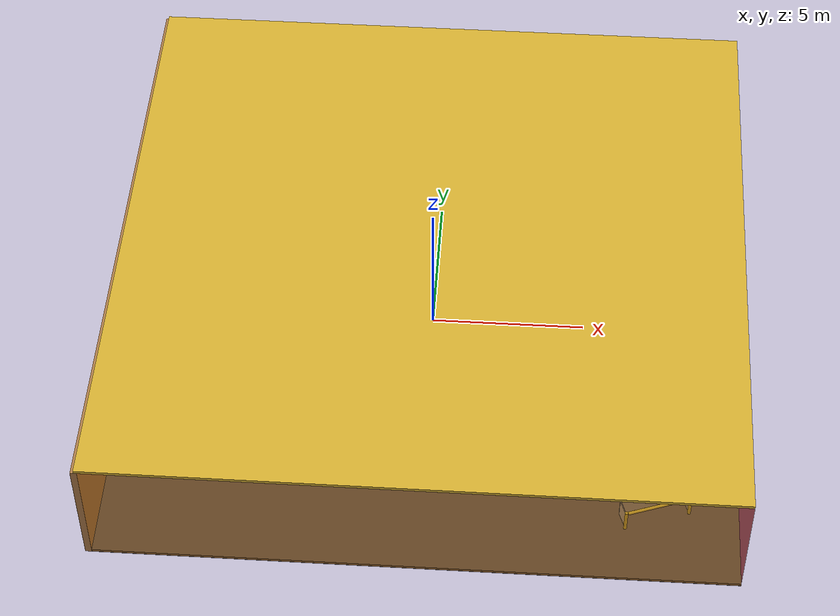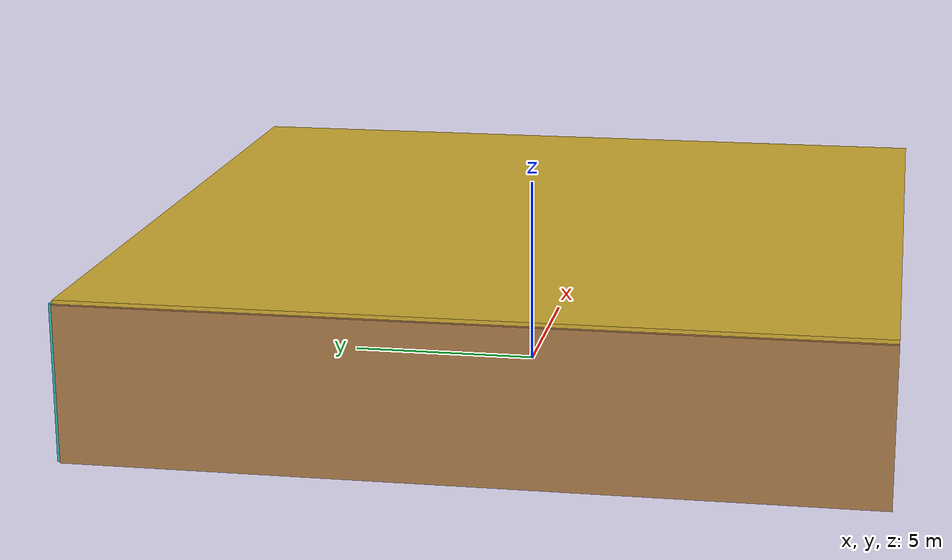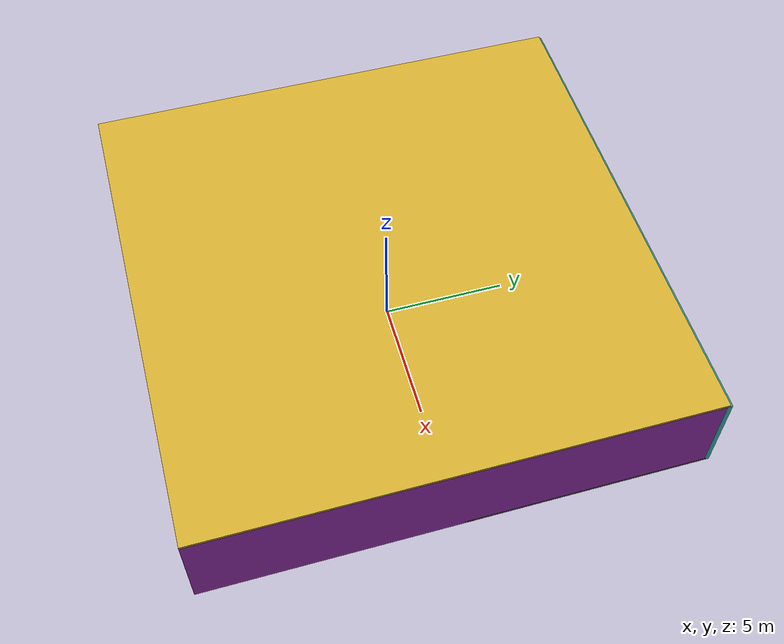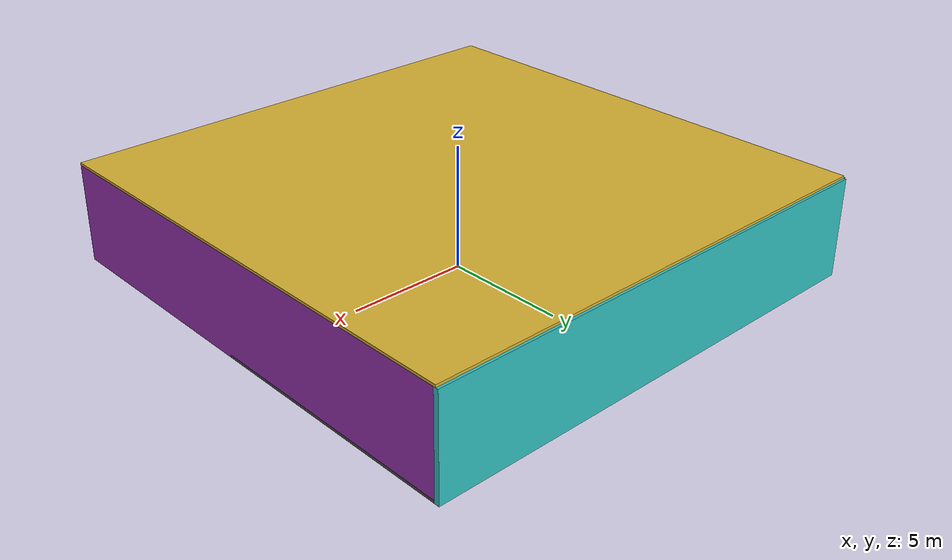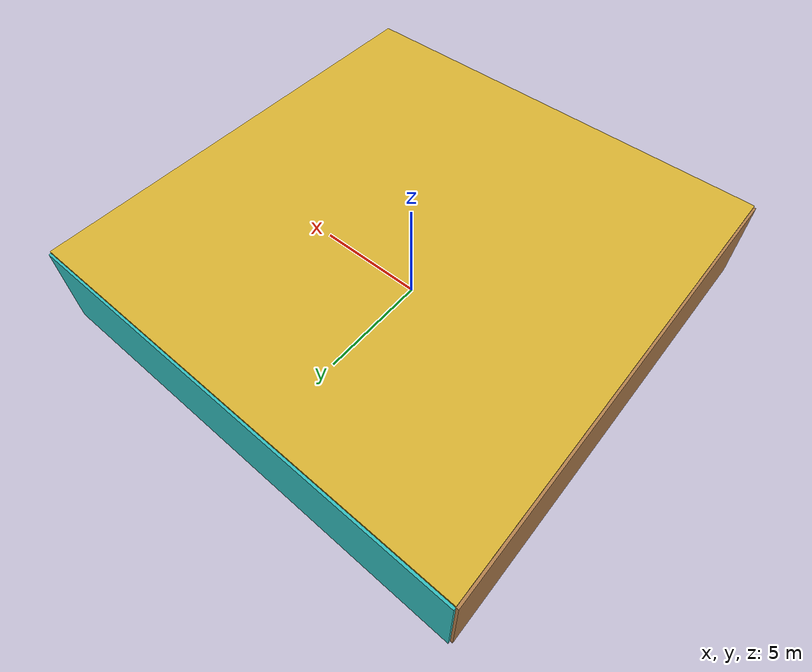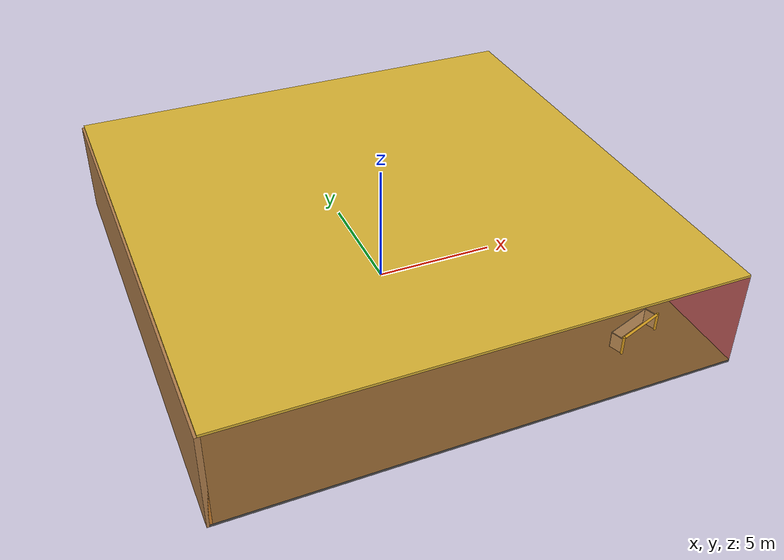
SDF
<sdf version="1.4">
 <world name="default">
  <physics type="ode">
   <max_step_size>0.001</max_step_size>
   <real_time_factor>1</real_time_factor>
   <real_time_update_rate>1000</real_time_update_rate>
   <gravity>0 0 -9.8</gravity>
  </physics>
  <scene><ambient>0.4 0.4 0.4 1</ambient><background>0.7 0.7 0.7 1</background><shadows>1</shadows></scene>
  <model name="Surrounding">
   <static>1</static>
   <link name="Ceiling">
    <collision name="Ceiling_Collision"><geometry><box><size>20 20 0.1</size></box></geometry></collision>
    <visual name="Ceiling_Visual">
     <geometry><box><size>20 20 0.1</size></box></geometry>
     <material>
      <script><uri>file://media/materials/scripts/gazebo.material</uri><name>Gazebo/Gold</name></script>
     </material>
    </visual>
    <pose>0 0 4.05 0 0 0</pose>
   </link>
   <link name="Wall_South">
    <collision name="Wall_South_Collision">
     <geometry><box><size>20 0 4</size></box></geometry>
     <pose>0 0 2 0 -0 0</pose>
    </collision>
    <visual name="Wall_South_Visual">
     <pose>0 0 2 0 -0 0</pose>
     <geometry><box><size>20 0 4</size></box></geometry>
     <material>
      <script>
       <uri>file://media/materials/scripts/gazebo.material</uri>
       <name>Gazebo/OrangeTransparent</name>
      </script>
     </material>
    </visual>
    <velocity_decay><linear>0</linear><angular>0</angular></velocity_decay>
    <pose>0 -10 0 0 -0 0</pose>
   </link>
   <link name="Wall_East">
    <collision name="Wall_21_Collision">
     <geometry><box><size>20 0 4</size></box></geometry>
     <pose>0 0 2 0 -0 0</pose>
    </collision>
    <visual name="Wall_21_Visual">
     <pose>0 0 2 0 -0 0</pose>
     <geometry><box><size>20 0 4</size></box></geometry>
     <material>
      <script><uri>file://media/materials/scripts/gazebo.material</uri><name>Gazebo/PurpleGlow</name></script>
     </material>
    </visual>
    <velocity_decay><linear>0</linear><angular>0</angular></velocity_decay>
    <pose>10 0 0 0 -0 1.5708</pose>
   </link>
   <link name="Wall_North">
    <collision name="Wall_22_Collision">
     <geometry><box><size>20 0.2 4</size></box></geometry>
     <pose>0 0 2 0 -0 0</pose>
    </collision>
    <visual name="Wall_22_Visual">
     <pose>0 0 2 0 -0 0</pose>
     <geometry><box><size>20 0.2 4</size></box></geometry>
     <material>
      <script><uri>file://media/materials/scripts/gazebo.material</uri><name>Gazebo/Turquoise</name></script>
     </material>
    </visual>
    <velocity_decay><linear>0</linear><angular>0</angular></velocity_decay>
    <pose>0 10 0 0 -0 0</pose>
   </link>
   <link name="Wall_West">
    <collision name="Wall_23_Collision">
     <geometry><box><size>20 0.2 4</size></box></geometry>
     <pose>0 0 2 0 -0 0</pose>
    </collision>
    <visual name="Wall_23_Visual">
     <pose>0 0 2 0 -0 0</pose>
     <geometry><box><size>20 0.2 4</size></box></geometry>
     <material>
      <script><uri>file://media/materials/scripts/gazebo.material</uri><name>Gazebo/WoodPallet</name></script>
     </material>
    </visual>
    <velocity_decay><linear>0</linear><angular>0</angular></velocity_decay>
    <pose>-10 0 0 0 0 -1.5708</pose>
   </link>
   <link name="Ground_link">
    <collision name="collision">
     <pose>0 0 .05 0 -0 0</pose>
     <geometry><box><size>20 20 0.1</size></box></geometry>
    </collision>
    <visual name="visual">
     <pose>0 0 .05 0 -0 0</pose>
     <geometry><box><size>20 20 0.1</size></box></geometry>
     <material>
      <script><uri>file://media/materials/scripts/gazebo.material</uri><name>Gazebo/DarkGrey</name></script>
     </material>
    </visual>
   </link>
   <static>1</static>
  </model>
  <spherical_coordinates>
   <surface_model>EARTH_WGS84</surface_model>
   <latitude_deg>0</latitude_deg>
   <longitude_deg>0</longitude_deg>
   <elevation>0</elevation>
   <heading_deg>0</heading_deg>
  </spherical_coordinates>
  <light name="lightball_0" type="diffuse">
   <diffuse>0.8 0.8 0.8 1</diffuse>
   <specular>0.2 0.2 0.2 1</specular>
   <attenuation>
    <range>100</range>
    <constant>0.7</constant>
    <linear>0.01</linear>
    <quadratic>0.001</quadratic>
   </attenuation>
   <direction>-0.5 0.1 -0.9</direction>
   <pose>0.118799541003 -4.08590867636 3.44247619225 0 0 0</pose>
  </light>
  <light name="lightball_1" type="diffuse">
   <diffuse>0.8 0.8 0.8 1</diffuse>
   <specular>0.2 0.2 0.2 1</specular>
   <attenuation>
    <range>100</range>
    <constant>0.7</constant>
    <linear>0.01</linear>
    <quadratic>0.001</quadratic>
   </attenuation>
   <direction>-0.5 0.1 -0.9</direction>
   <pose>6.47552847849 -3.36347000941 0.651172293221 0 0 0</pose>
  </light>
  <light name="lightball_2" type="diffuse">
   <diffuse>0.8 0.8 0.8 1</diffuse>
   <specular>0.2 0.2 0.2 1</specular>
   <attenuation>
    <range>100</range>
    <constant>0.7</constant>
    <linear>0.01</linear>
    <quadratic>0.001</quadratic>
   </attenuation>
   <direction>-0.5 0.1 -0.9</direction>
   <pose>6.09432538513 4.03097203471 0.681746620135 0 0 0</pose>
  </light>
  <light name="lightball_3" type="diffuse">
   <diffuse>0.8 0.8 0.8 1</diffuse>
   <specular>0.2 0.2 0.2 1</specular>
   <attenuation>
    <range>100</range>
    <constant>0.7</constant>
    <linear>0.01</linear>
    <quadratic>0.001</quadratic>
   </attenuation>
   <direction>-0.5 0.1 -0.9</direction>
   <pose>-5.74496669872 -4.56784870648 3.82373349933 0 0 0</pose>
  </light>
  <light name="lightball_4" type="diffuse">
   <diffuse>0.8 0.8 0.8 1</diffuse>
   <specular>0.2 0.2 0.2 1</specular>
   <attenuation>
    <range>100</range>
    <constant>0.7</constant>
    <linear>0.01</linear>
    <quadratic>0.001</quadratic>
   </attenuation>
   <direction>-0.5 0.1 -0.9</direction>
   <pose>-1.45299682436 9.8873697899 1.93242046325 0 0 0</pose>
  </light>
  <light name="lightball_5" type="diffuse">
   <diffuse>0.8 0.8 0.8 1</diffuse>
   <specular>0.2 0.2 0.2 1</specular>
   <attenuation>
    <range>100</range>
    <constant>0.7</constant>
    <linear>0.01</linear>
    <quadratic>0.001</quadratic>
   </attenuation>
   <direction>-0.5 0.1 -0.9</direction>
   <pose>-6.68279444112 6.21479171261 3.68324429372 0 0 0</pose>
  </light>
  <light name="lightball_6" type="diffuse">
   <diffuse>0.8 0.8 0.8 1</diffuse>
   <specular>0.2 0.2 0.2 1</specular>
   <attenuation>
    <range>100</range>
    <constant>0.7</constant>
    <linear>0.01</linear>
    <quadratic>0.001</quadratic>
   </attenuation>
   <direction>-0.5 0.1 -0.9</direction>
   <pose>8.54364739104 -4.5184448131 1.61504227318 0 0 0</pose>
  </light>
  <light name="lightball_7" type="diffuse">
   <diffuse>0.8 0.8 0.8 1</diffuse>
   <specular>0.2 0.2 0.2 1</specular>
   <attenuation>
    <range>100</range>
    <constant>0.7</constant>
    <linear>0.01</linear>
    <quadratic>0.001</quadratic>
   </attenuation>
   <direction>-0.5 0.1 -0.9</direction>
   <pose>1.12212355339 1.34686519245 1.69501102145 0 0 0</pose>
  </light>
  <light name="lightball_8" type="diffuse">
   <diffuse>0.8 0.8 0.8 1</diffuse>
   <specular>0.2 0.2 0.2 1</specular>
   <attenuation>
    <range>100</range>
    <constant>0.7</constant>
    <linear>0.01</linear>
    <quadratic>0.001</quadratic>
   </attenuation>
   <direction>-0.5 0.1 -0.9</direction>
   <pose>-7.15388456729 -0.320104392663 3.08582301346 0 0 0</pose>
  </light>
  <light name="lightball_9" type="diffuse">
   <diffuse>0.8 0.8 0.8 1</diffuse>
   <specular>0.2 0.2 0.2 1</specular>
   <attenuation>
    <range>100</range>
    <constant>0.7</constant>
    <linear>0.01</linear>
    <quadratic>0.001</quadratic>
   </attenuation>
   <direction>-0.5 0.1 -0.9</direction>
   <pose>-1.77765212996 -4.25377165207 0.735779382621 0 0 0</pose>
  </light>
  <light name="lightball_10" type="diffuse">
   <diffuse>0.8 0.8 0.8 1</diffuse>
   <specular>0.2 0.2 0.2 1</specular>
   <attenuation>
    <range>100</range>
    <constant>0.7</constant>
    <linear>0.01</linear>
    <quadratic>0.001</quadratic>
   </attenuation>
   <direction>-0.5 0.1 -0.9</direction>
   <pose>-5.1970360463 -8.88702681897 1.43652724277 0 0 0</pose>
  </light>
  <light name="lightball_11" type="diffuse">
   <diffuse>0.8 0.8 0.8 1</diffuse>
   <specular>0.2 0.2 0.2 1</specular>
   <attenuation>
    <range>100</range>
    <constant>0.7</constant>
    <linear>0.01</linear>
    <quadratic>0.001</quadratic>
   </attenuation>
   <direction>-0.5 0.1 -0.9</direction>
   <pose>7.12832511354 -0.808826406148 2.6854832785 0 0 0</pose>
  </light>
  <light name="lightball_12" type="diffuse">
   <diffuse>0.8 0.8 0.8 1</diffuse>
   <specular>0.2 0.2 0.2 1</specular>
   <attenuation>
    <range>100</range>
    <constant>0.7</constant>
    <linear>0.01</linear>
    <quadratic>0.001</quadratic>
   </attenuation>
   <direction>-0.5 0.1 -0.9</direction>
   <pose>-8.53674914522 -9.29026793138 2.4442121138 0 0 0</pose>
  </light>
  <include><uri>model://table</uri><pose>-7.92294490145 7.15979555048 0 0 0 2.79706475064</pose></include>
  <include>
   <uri>model://robocup_3Dsim_goal</uri>
   <pose>-3.88716557561 -4.47445742254 0 0 0 2.25025515457</pose>
  </include>
  <include>
   <uri>model://textured_shapes</uri>
   <pose>-5.21723467389 1.72836218809 0 0 0 0.698108006936</pose>
  </include>
  <include>
   <uri>model://robocup_3Dsim_goal</uri>
   <pose>1.70869950843 -2.23588151837 0 0 0 0.989889442148</pose>
  </include>
  <include>
   <uri>model://robocup_3Dsim_goal</uri>
   <pose>7.45274511466 -7.80363874468 0 0 0 1.90869141954</pose>
  </include>
  <include><uri>model://table</uri><pose>8.22813498753 -0.868467462002 0 0 0 0.738377122294</pose></include>
  <include><uri>model://cabinet</uri><pose>7.48946667478 0.988031220546 0 0 0 2.60793890709</pose></include>
 </world>
</sdf>

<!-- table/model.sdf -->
<sdf version="1.5">
  <model name="table">
    <static>true</static>
    <link name="link">
      <collision name="surface">
        <pose>0 0 1.0 0 0 0</pose>
        <geometry>
          <box>
            <size>1.5 0.8 0.03</size>
          </box>
        </geometry>
        <surface>
          <friction>
            <ode>
              <mu>0.6</mu>
              <mu2>0.6</mu2>
            </ode>
          </friction>
        </surface>
      </collision>
      <visual name="visual1">
        <pose>0 0 1.0 0 0 0</pose>
        <geometry>
          <box>
            <size>1.5 0.8 0.03</size>
          </box>
        </geometry>
        <material>
          <script>
            <uri>model://media/materials/scripts/gazebo.material</uri>
            <name>Gazebo/Wood</name>
          </script>
        </material>
      </visual>
      <collision name="front_left_leg">
        <pose>0.68 0.38 0.5 0 0 0</pose>
        <geometry>
          <cylinder>
            <radius>0.02</radius>
            <length>1.0</length>
          </cylinder>
        </geometry>
      </collision>
      <visual name="front_left_leg">
        <pose>0.68 0.38 0.5 0 0 0</pose>
        <geometry>
          <cylinder>
            <radius>0.02</radius>
            <length>1.0</length>
          </cylinder>
        </geometry>
        <material>
          <script>
            <uri>model://media/materials/scripts/gazebo.material</uri>
            <name>Gazebo/Grey</name>
          </script>
        </material>
      </visual>
      <collision name="front_right_leg">
        <pose>0.68 -0.38 0.5 0 0 0</pose>
        <geometry>
          <cylinder>
            <radius>0.02</radius>
            <length>1.0</length>
          </cylinder>
        </geometry>
      </collision>
      <visual name="front_right_leg">
        <pose>0.68 -0.38 0.5 0 0 0</pose>
        <geometry>
          <cylinder>
            <radius>0.02</radius>
            <length>1.0</length>
          </cylinder>
        </geometry>
        <material>
          <script>
            <uri>model://media/materials/scripts/gazebo.material</uri>
            <name>Gazebo/Grey</name>
          </script>
        </material>
      </visual>
      <collision name="back_right_leg">
        <pose>-0.68 -0.38 0.5 0 0 0</pose>
        <geometry>
          <cylinder>
            <radius>0.02</radius>
            <length>1.0</length>
          </cylinder>
        </geometry>
      </collision>
      <visual name="back_right_leg">
        <pose>-0.68 -0.38 0.5 0 0 0</pose>
        <geometry>
          <cylinder>
            <radius>0.02</radius>
            <length>1.0</length>
          </cylinder>
        </geometry>
        <material>
          <script>
            <uri>model://media/materials/scripts/gazebo.material</uri>
            <name>Gazebo/Grey</name>
          </script>
        </material>
      </visual>
      <collision name="back_left_leg">
        <pose>-0.68 0.38 0.5 0 0 0</pose>
        <geometry>
          <cylinder>
            <radius>0.02</radius>
            <length>1.0</length>
          </cylinder>
        </geometry>
      </collision>
      <visual name="back_left_leg">
        <pose>-0.68 0.38 0.5 0 0 0</pose>
        <geometry>
          <cylinder>
            <radius>0.02</radius>
            <length>1.0</length>
          </cylinder>
        </geometry>
        <material>
          <script>
            <uri>model://media/materials/scripts/gazebo.material</uri>
            <name>Gazebo/Grey</name>
          </script>
        </material>
      </visual>
    </link>
  </model>
</sdf>

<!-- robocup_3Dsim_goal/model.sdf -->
<sdf version="1.5">
  <model name="robocup_3d_goal">
    <static>true</static>
    <link name="left_post">
      <pose>0 1.05 0.45 0 0 0</pose>
      <collision name="collision">
        <geometry>
          <cylinder>
            <radius>0.05</radius>
            <length>0.9</length>
          </cylinder>
        </geometry>
      </collision>
      <visual name="visual">
        <geometry>
          <cylinder>
            <radius>0.05</radius>
            <length>0.9</length>
          </cylinder>
        </geometry>
        <material>
          <script>
            <uri>file://media/materials/scripts/gazebo.material</uri>
            <name>Gazebo/ZincYellow</name>
          </script>
        </material>
      </visual>
    </link>
    <link name="left_support_horiz_lower">
      <pose>0.30 1.05 0.01 0 0 0</pose>
      <collision name="collision">
        <geometry>
          <box>
            <size>0.50 0.02 0.02</size>
          </box>
        </geometry>
      </collision>
      <visual name="visual">
        <geometry>
          <box>
            <size>0.50 0.02 0.02</size>
          </box>
        </geometry>
        <material>
          <script>
            <uri>file://media/materials/scripts/gazebo.material</uri>
            <name>Gazebo/White</name>
          </script>
        </material>
      </visual>
    </link>
    <link name="left_support_horiz_upper">
      <pose>0.30 1.05 0.79 0 0 0</pose>
      <collision name="collision">
        <geometry>
          <box>
            <size>0.50 0.02 0.02</size>
          </box>
        </geometry>
      </collision>
      <visual name="visual">
        <geometry>
          <box>
            <size>0.50 0.02 0.02</size>
          </box>
        </geometry>
        <material>
          <script>
            <uri>file://media/materials/scripts/gazebo.material</uri>
            <name>Gazebo/White</name>
          </script>
        </material>
      </visual>
    </link>
    <link name="left_support_vertical">
      <pose>0.56 1.05 0.4 0 1.5708 0</pose>
      <collision name="collision">
        <geometry>
          <box>
            <size>0.80 0.02 0.02</size>
          </box>
        </geometry>
      </collision>
      <visual name="visual">
        <geometry>
          <box>
            <size>0.80 0.02 0.02</size>
          </box>
        </geometry>
        <material>
          <script>
            <uri>file://media/materials/scripts/gazebo.material</uri>
            <name>Gazebo/White</name>
          </script>
        </material>
      </visual>
    </link>
    <link name="right_support_horiz_lower">
      <pose>0.30 -1.05 0.01 0 0 0</pose>
      <collision name="collision">
        <geometry>
          <box>
            <size>0.50 0.02 0.02</size>
          </box>
        </geometry>
      </collision>
      <visual name="visual">
        <geometry>
          <box>
            <size>0.50 0.02 0.02</size>
          </box>
        </geometry>
        <material>
          <script>
            <uri>file://media/materials/scripts/gazebo.material</uri>
            <name>Gazebo/White</name>
          </script>
        </material>
      </visual>
    </link>
    <link name="right_support_horiz_upper">
      <pose>0.30 -1.05 0.79 0 0 0</pose>
      <collision name="collision">
        <geometry>
          <box>
            <size>0.50 0.02 0.02</size>
          </box>
        </geometry>
      </collision>
      <visual name="visual">
        <geometry>
          <box>
            <size>0.50 0.02 0.02</size>
          </box>
        </geometry>
        <material>
          <script>
            <uri>file://media/materials/scripts/gazebo.material</uri>
            <name>Gazebo/White</name>
          </script>
        </material>
      </visual>
    </link>
    <link name="right_support_vertical">
      <pose>0.56 -1.05 0.4 0 1.5708 0</pose>
      <collision name="collision">
        <geometry>
          <box>
            <size>0.80 0.02 0.02</size>
          </box>
        </geometry>
      </collision>
      <visual name="visual">
        <geometry>
          <box>
            <size>0.80 0.02 0.02</size>
          </box>
        </geometry>
        <material>
          <script>
            <uri>file://media/materials/scripts/gazebo.material</uri>
            <name>Gazebo/White</name>
          </script>
        </material>
      </visual>
    </link>
    <link name="center_support_horiz_lower">
      <pose>0.56 0 0.01 0 1.5708 0</pose>
      <collision name="collision">
        <geometry>
          <box>
            <size>0.02 2.08 0.02</size>
          </box>
        </geometry>
      </collision>
      <visual name="visual">
        <geometry>
          <box>
            <size>0.02 2.08 0.02</size>
          </box>
        </geometry>
        <material>
          <script>
            <uri>file://media/materials/scripts/gazebo.material</uri>
            <name>Gazebo/White</name>
          </script>
        </material>
      </visual>
    </link>
    <link name="center_support_horiz_upper">
      <pose>0.56 0 0.79 0 1.5708 0</pose>
      <collision name="collision">
        <geometry>
          <box>
            <size>0.02 2.08 0.02</size>
          </box>
        </geometry>
      </collision>
      <visual name="visual">
        <geometry>
          <box>
            <size>0.02 2.08 0.02</size>
          </box>
        </geometry>
        <material>
          <script>
            <uri>file://media/materials/scripts/gazebo.material</uri>
            <name>Gazebo/White</name>
          </script>
        </material>
      </visual>
    </link>
    <link name="right_post">
      <pose>0 -1.05 0.45 0 0 0</pose>
      <collision name="collision">
        <geometry>
          <cylinder>
            <radius>0.05</radius>
            <length>0.9</length>
          </cylinder>
        </geometry>
      </collision>
      <visual name="visual">
        <geometry>
          <cylinder>
            <radius>0.05</radius>
            <length>0.9</length>
          </cylinder>
        </geometry>
        <material>
          <script>
            <uri>file://media/materials/scripts/gazebo.material</uri>
            <name>Gazebo/ZincYellow</name>
          </script>
        </material>
      </visual>
    </link>
    <link name="crossbar">
      <pose>0 0 0.85 1.57 1.57 0</pose>
      <collision name="collision">
        <geometry>
          <cylinder>
            <radius>0.05</radius>
            <length>2.0</length>
          </cylinder>
        </geometry>
      </collision>
      <visual name="visual">
        <geometry>
          <cylinder>
            <radius>0.05</radius>
            <length>2.0</length>
          </cylinder>
        </geometry>
        <material>
          <script>
            <uri>file://media/materials/scripts/gazebo.material</uri>
            <name>Gazebo/ZincYellow</name>
          </script>
        </material>
      </visual>
    </link>
    <link name="center_net">
      <pose>0.56 0 0.40 0 0 0</pose>
      <collision name="collision">
        <geometry>
          <box>
            <size>0.01 2.1 0.80</size>
          </box>
        </geometry>
      </collision>
      <visual name="visual">
        <geometry>
          <box>
            <size>0.01 2.1 0.80</size>
          </box>
        </geometry>
        <material>
          <script>
            <uri>model://../model_source/models/robocup09_spl_field/materials/scripts/</uri>
            <uri>model://../model_source/models/robocup09_spl_field/materials/textures/</uri>
            <name>RoboCup/Net</name>
          </script>
        </material>
      </visual>
    </link>
    <link name="left_net">
      <pose>0.30 1.05 0.40 0 0 0</pose>
      <collision name="collision">
        <geometry>
          <box>
            <size>0.50 0.01 0.76</size>
          </box>
        </geometry>
      </collision>
      <visual name="visual">
        <geometry>
          <box>
            <size>0.50 0.01 0.76</size>
          </box>
        </geometry>
        <material>
          <script>
            <uri>model://../model_source/models/robocup09_spl_field/materials/scripts/</uri>
            <uri>model://../model_source/models/robocup09_spl_field/materials/textures/</uri>
            <name>RoboCup/Net</name>
          </script>
        </material>
      </visual>
    </link>
    <link name="right_net">
      <pose>0.30 -1.05 0.40 0 0 0</pose>
      <collision name="collision">
        <geometry>
          <box>
            <size>0.50 0.01 0.76</size>
          </box>
        </geometry>
      </collision>
      <visual name="visual">
        <geometry>
          <box>
            <size>0.50 0.01 0.76</size>
          </box>
        </geometry>
        <material>
          <script>
            <uri>model://../model_source/models/robocup09_spl_field/materials/scripts/</uri>
            <uri>model://../model_source/models/robocup09_spl_field/materials/textures/</uri>
            <name>RoboCup/Net</name>
          </script>
        </material>
      </visual>
    </link>
  </model>
</sdf>

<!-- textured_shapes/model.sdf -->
<sdf version="1.6">
  <model name="textured_shapes">
    <pose>0 0 0.5 0 0 0</pose>
    <link name="box">
      <pose>0 -1.5 0 0 0 0</pose>
      <collision name="collision">
        <geometry>
          <box>
            <size>1 1 1</size>
          </box>
        </geometry>
      </collision>
      <visual name="visual">
        <geometry>
          <box>
            <size>1 1 1</size>
          </box>
        </geometry>
        <material>
          <script>
            <uri>model://../model_source/models/textured_shapes/materials/scripts</uri>
            <uri>model://../model_source/models/textured_shapes/materials/textures</uri>
            <name>TexturedShape/Squares</name>
          </script>
        </material>
      </visual>
    </link>
    <link name="sphere">
      <collision name="collision">
        <geometry>
          <sphere>
            <radius>0.5</radius>
          </sphere>
        </geometry>
      </collision>
      <visual name="visual">
        <geometry>
          <sphere>
            <radius>0.5</radius>
          </sphere>
        </geometry>
        <material>
          <script>
            <uri>model://../model_source/models/textured_shapes/materials/scripts</uri>
            <uri>model://../model_source/models/textured_shapes/materials/textures</uri>
            <name>TexturedShape/Squares</name>
          </script>
        </material>
      </visual>
    </link>
    <link name="cylinder">
      <pose>0 1.5 0 0 0 0</pose>
      <collision name="collision">
        <geometry>
          <cylinder>
            <radius>0.5</radius>
            <length>1</length>
          </cylinder>
        </geometry>
      </collision>
      <visual name="visual">
        <geometry>
          <cylinder>
            <radius>0.5</radius>
            <length>1</length>
          </cylinder>
        </geometry>
        <material>
          <script>
            <uri>model://../model_source/models/textured_shapes/materials/scripts</uri>
            <uri>model://../model_source/models/textured_shapes/materials/textures</uri>
            <name>TexturedShape/Squares</name>
          </script>
        </material>
      </visual>
    </link>
  </model>
</sdf>

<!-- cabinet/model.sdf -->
<sdf version="1.5">
  <model name="cabinet">
    <static>true</static>
    <link name="cabinet_bottom_plate">
      <inertial>
        <pose>0 0 -1 0 0 0</pose>
        <inertia>
          <ixx>2.050000</ixx>
          <ixy>0</ixy>
          <ixz>0</ixz>
          <iyy>2.050000</iyy>
          <iyz>0</iyz>
          <izz>2.050000</izz>
        </inertia>
        <mass>25.000000</mass>
      </inertial>
      <collision name="cabinet_bottom_plate_geom">
        <pose>0 0 0.010000 0 0 0</pose>
        <geometry>
          <box>
            <size>0.450000 0.450000 0.020000</size>
          </box>
        </geometry>
      </collision>
      <visual name="cabinet_bottom_plate_geom_visual">
        <pose>0 0 0.010000 0 0 0</pose>
        <geometry>
          <box>
            <size>0.450000 0.450000 0.020000</size>
          </box>
        </geometry>
        <material>
          <script>
            <uri>model://media/materials/scripts/gazebo.material</uri>
            <name>Gazebo/Wood</name>
          </script>
        </material>
      </visual>
      <collision name="cabinet_bottom_plate_geom_cabinet_back_plate">
        <pose>0.235000 0 0.510000 0 0 0</pose>
        <geometry>
          <box>
            <size>0.020000 0.450000 1.020000</size>
          </box>
        </geometry>
      </collision>
      <visual name="cabinet_bottom_plate_geom_cabinet_back_plate_visual">
        <pose>0.235000 0 0.510000 0 0 0</pose>
        <geometry>
          <box>
            <size>0.020000 0.450000 1.020000</size>
          </box>
        </geometry>
        <material>
          <script>
            <uri>model://media/materials/scripts/gazebo.material</uri>
            <name>Gazebo/Wood</name>
          </script>
        </material>
      </visual>
      <collision name="cabinet_bottom_plate_geom_cabinet_left_plate">
        <pose>0 0.235000 0.510000 0 0 0</pose>
        <geometry>
          <box>
            <size>0.450000 0.020000 1.020000</size>
          </box>
        </geometry>
      </collision>
      <visual name="cabinet_bottom_plate_geom_cabinet_left_plate_visual">
        <pose>0 0.235000 0.510000 0 0 0</pose>
        <geometry>
          <box>
            <size>0.450000 0.020000 1.020000</size>
          </box>
        </geometry>
        <material>
          <script>
            <uri>model://media/materials/scripts/gazebo.material</uri>
            <name>Gazebo/Wood</name>
          </script>
        </material>
      </visual>
      <collision name="cabinet_bottom_plate_geom_cabinet_middle_plate">
        <pose>0 0 0.510000 0 0 0</pose>
        <geometry>
          <box>
            <size>0.450000 0.450000 0.020000</size>
          </box>
        </geometry>
      </collision>
      <visual name="cabinet_bottom_plate_geom_cabinet_middle_plate_visual">
        <pose>0 0 0.510000 0 0 0</pose>
        <geometry>
          <box>
            <size>0.450000 0.450000 0.020000</size>
          </box>
        </geometry>
        <material>
          <script>
            <uri>model://media/materials/scripts/gazebo.material</uri>
            <name>Gazebo/Wood</name>
          </script>
        </material>
      </visual>
      <collision name="cabinet_bottom_plate_geom_cabinet_right_plate">
        <pose>0 -0.235000 0.510000 0 0 0</pose>
        <geometry>
          <box>
            <size>0.450000 0.020000 1.020000</size>
          </box>
        </geometry>
      </collision>
      <visual name="cabinet_bottom_plate_geom_cabinet_right_plate_visual">
        <pose>0 -0.235000 0.510000 0 0 0</pose>
        <geometry>
          <box>
            <size>0.450000 0.020000 1.020000</size>
          </box>
        </geometry>
        <material>
          <script>
            <uri>model://media/materials/scripts/gazebo.material</uri>
            <name>Gazebo/Wood</name>
          </script>
        </material>
      </visual>
      <collision name="cabinet_bottom_plate_geom_cabinet_top_plate">
        <pose>0 0 1.010000 0 0 0</pose>
        <geometry>
          <box>
            <size>0.450000 0.450000 0.020000</size>
          </box>
        </geometry>
      </collision>
      <visual name="cabinet_bottom_plate_geom_cabinet_top_plate_visual">
        <pose>0 0 1.010000 0 0 0</pose>
        <geometry>
          <box>
            <size>0.450000 0.450000 0.020000</size>
          </box>
        </geometry>
        <material>
          <script>
            <uri>model://media/materials/scripts/gazebo.material</uri>
            <name>Gazebo/Wood</name>
          </script>
        </material>
      </visual>
    </link>
  </model>
</sdf>
